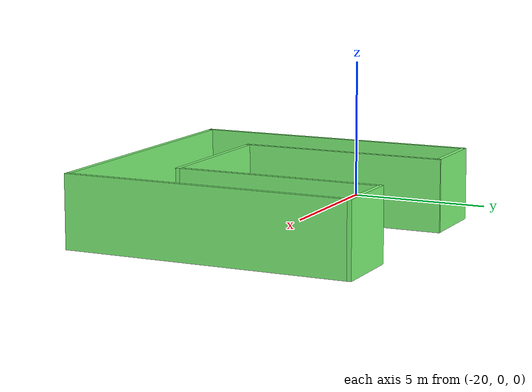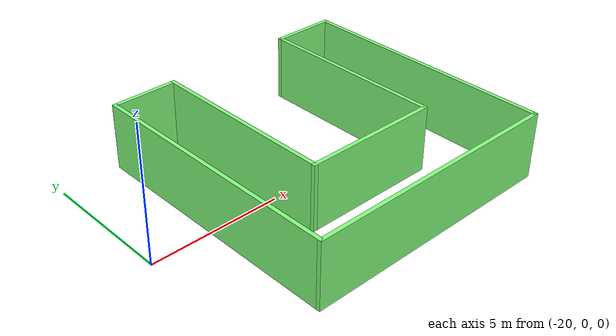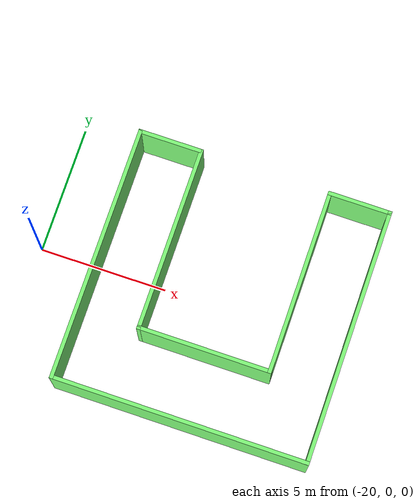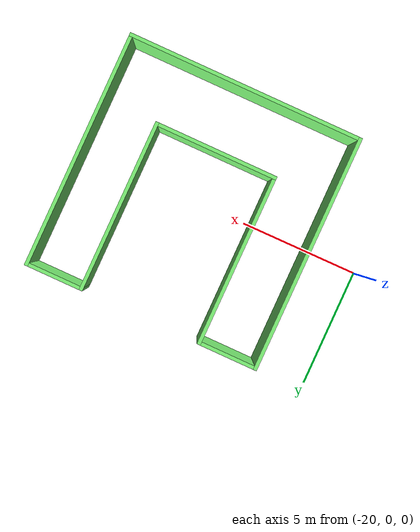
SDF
<?xml version='1.0'?>
<sdf version='1.6'>
  <model name='mybuilding'>
    <pose frame=''>-12.7222 0.097804 0 0 -0 0</pose>
    <link name='Wall_10'>
      <collision name='Wall_10_Collision'>
        <geometry>
          <box>
            <size>7.25 0.15 2.5</size>
          </box>
        </geometry>
        <pose frame=''>0 0 1.25 0 -0 0</pose>
      </collision>
      <visual name='Wall_10_Visual'>
        <pose frame=''>0 0 1.25 0 -0 0</pose>
        <geometry>
          <box>
            <size>7.25 0.15 2.5</size>
          </box>
        </geometry>
        <material>
          <script>
            <uri>file://media/materials/scripts/gazebo.material</uri>
            <name>Gazebo/Grey</name>
          </script>
          <ambient>0.513726 1 0.486275 1</ambient>
        </material>
        <meta>
          <layer>0</layer>
        </meta>
      </visual>
      <pose frame=''>2.575 1.37481 0 0 0 -1.5708</pose>
    </link>
    <link name='Wall_11'>
      <collision name='Wall_11_Collision'>
        <geometry>
          <box>
            <size>5.23131 0.15 2.5</size>
          </box>
        </geometry>
        <pose frame=''>0 0 1.25 0 -0 0</pose>
      </collision>
      <visual name='Wall_11_Visual'>
        <pose frame=''>0 0 1.25 0 -0 0</pose>
        <geometry>
          <box>
            <size>5.23131 0.15 2.5</size>
          </box>
        </geometry>
        <material>
          <script>
            <uri>file://media/materials/scripts/gazebo.material</uri>
            <name>Gazebo/Grey</name>
          </script>
          <ambient>0.513726 1 0.486275 1</ambient>
        </material>
        <meta>
          <layer>0</layer>
        </meta>
      </visual>
      <pose frame=''>0.034348 -2.17519 0 0 -0 3.14159</pose>
    </link>
    <link name='Wall_12'>
      <collision name='Wall_12_Collision'>
        <geometry>
          <box>
            <size>7.25 0.15 2.5</size>
          </box>
        </geometry>
        <pose frame=''>0 0 1.25 0 -0 0</pose>
      </collision>
      <visual name='Wall_12_Visual'>
        <pose frame=''>0 0 1.25 0 -0 0</pose>
        <geometry>
          <box>
            <size>7.25 0.15 2.5</size>
          </box>
        </geometry>
        <material>
          <script>
            <uri>file://media/materials/scripts/gazebo.material</uri>
            <name>Gazebo/Grey</name>
          </script>
          <ambient>0.513726 1 0.486275 1</ambient>
        </material>
        <meta>
          <layer>0</layer>
        </meta>
      </visual>
      <pose frame=''>-2.5063 1.37481 0 0 -0 1.5708</pose>
    </link>
    <link name='Wall_4'>
      <collision name='Wall_4_Collision'>
        <geometry>
          <box>
            <size>10 0.15 2.5</size>
          </box>
        </geometry>
        <pose frame=''>0 0 1.25 0 -0 0</pose>
      </collision>
      <visual name='Wall_4_Visual'>
        <pose frame=''>0 0 1.25 0 -0 0</pose>
        <geometry>
          <box>
            <size>10 0.15 2.5</size>
          </box>
        </geometry>
        <material>
          <script>
            <uri>file://media/materials/scripts/gazebo.material</uri>
            <name>Gazebo/Grey</name>
          </script>
          <ambient>0.513726 1 0.486275 1</ambient>
        </material>
        <meta>
          <layer>0</layer>
        </meta>
      </visual>
      <pose frame=''>-4.9249 0 0 0 -0 1.57078</pose>
    </link>
    <link name='Wall_5'>
      <collision name='Wall_5_Collision'>
        <geometry>
          <box>
            <size>2.5 0.15 2.5</size>
          </box>
        </geometry>
        <pose frame=''>0 0 1.25 0 -0 0</pose>
      </collision>
      <visual name='Wall_5_Visual'>
        <pose frame=''>0 0 1.25 0 -0 0</pose>
        <geometry>
          <box>
            <size>2.5 0.15 2.5</size>
          </box>
        </geometry>
        <material>
          <script>
            <uri>file://media/materials/scripts/gazebo.material</uri>
            <name>Gazebo/Grey</name>
          </script>
          <ambient>0.513726 1 0.486275 1</ambient>
        </material>
        <meta>
          <layer>0</layer>
        </meta>
      </visual>
      <pose frame=''>-3.74981 4.9252 0 0 -0 0</pose>
    </link>
    <link name='Wall_7'>
      <collision name='Wall_7_Collision'>
        <geometry>
          <box>
            <size>10 0.15 2.5</size>
          </box>
        </geometry>
        <pose frame=''>0 0 1.25 0 -0 0</pose>
      </collision>
      <visual name='Wall_7_Visual'>
        <pose frame=''>0 0 1.25 0 -0 0</pose>
        <geometry>
          <box>
            <size>10 0.15 2.5</size>
          </box>
        </geometry>
        <material>
          <script>
            <uri>file://media/materials/scripts/gazebo.material</uri>
            <name>Gazebo/Grey</name>
          </script>
          <ambient>0.513726 1 0.486275 1</ambient>
        </material>
        <meta>
          <layer>0</layer>
        </meta>
      </visual>
      <pose frame=''>1e-06 -4.9252 0 0 -0 0</pose>
    </link>
    <link name='Wall_8'>
      <collision name='Wall_8_Collision'>
        <geometry>
          <box>
            <size>10 0.15 2.5</size>
          </box>
        </geometry>
        <pose frame=''>0 0 1.25 0 -0 0</pose>
      </collision>
      <visual name='Wall_8_Visual'>
        <pose frame=''>0 0 1.25 0 -0 0</pose>
        <geometry>
          <box>
            <size>10 0.15 2.5</size>
          </box>
        </geometry>
        <material>
          <script>
            <uri>file://media/materials/scripts/gazebo.material</uri>
            <name>Gazebo/Grey</name>
          </script>
          <ambient>0.513726 1 0.486275 1</ambient>
        </material>
        <meta>
          <layer>0</layer>
        </meta>
      </visual>
      <pose frame=''>4.925 -0.000195 0 0 -0 1.5708</pose>
    </link>
    <link name='Wall_9'>
      <collision name='Wall_9_Collision'>
        <geometry>
          <box>
            <size>2.5 0.15 2.5</size>
          </box>
        </geometry>
        <pose frame=''>0 0 1.25 0 -0 0</pose>
      </collision>
      <visual name='Wall_9_Visual'>
        <pose frame=''>0 0 1.25 0 -0 0</pose>
        <geometry>
          <box>
            <size>2.5 0.15 2.5</size>
          </box>
        </geometry>
        <material>
          <script>
            <uri>file://media/materials/scripts/gazebo.material</uri>
            <name>Gazebo/Grey</name>
          </script>
          <ambient>0.513726 1 0.486275 1</ambient>
        </material>
        <meta>
          <layer>0</layer>
        </meta>
      </visual>
      <pose frame=''>3.75 4.92481 0 0 -0 3.14159</pose>
    </link>
    <static>1</static>
  </model>
</sdf>
